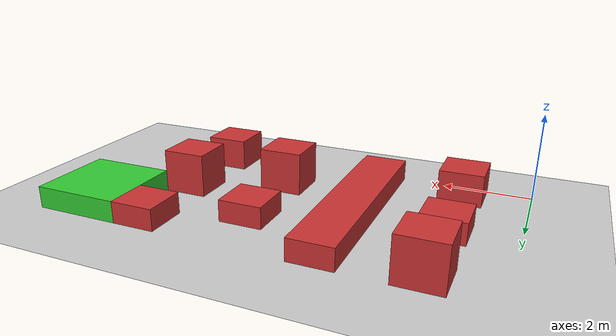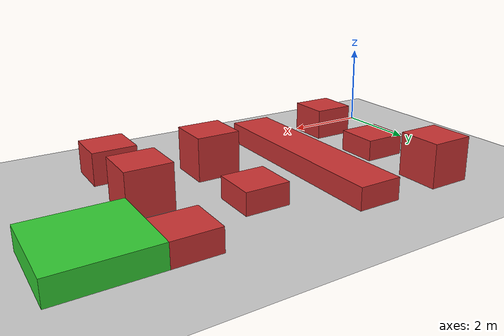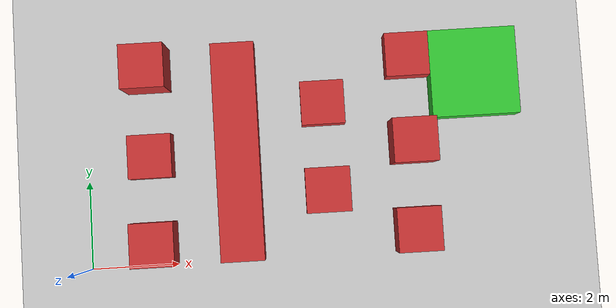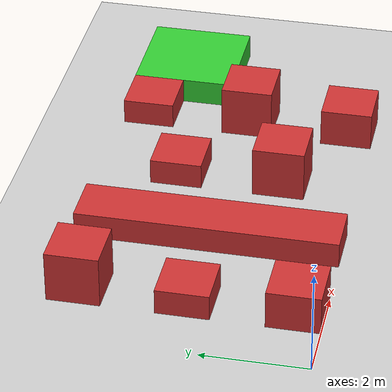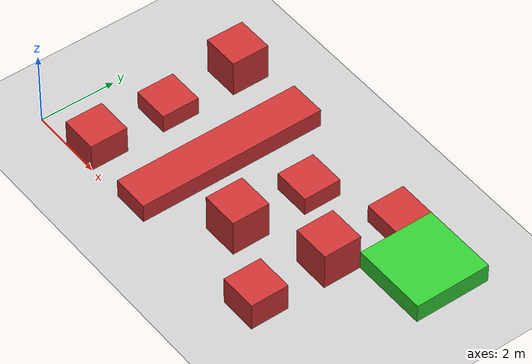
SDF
<?xml version="1.0" ?>
<sdf version="1.6">
  <world name="matlab_env">

    <!-- Include ground and sun -->
    <include>
      <uri>model://ground_plane</uri>
    </include>
    <include>
      <uri>model://sun</uri>
    </include>

    <!-- WALL_2 -->
    <model name="wall_2">
      <static>true</static>
      <pose>3.5 2.5 0.25 0 0 0</pose>
      <link name="link">
        <visual name="visual">
          <geometry><box><size>1 5 0.5</size></box></geometry>
          <material><ambient>0.8 0.2 0.2 1</ambient></material>
        </visual>
        <collision name="collision">
          <geometry><box><size>1 5 0.5</size></box></geometry>
        </collision>
      </link>
    </model>

    <!-- WALL_3 -->
    <model name="wall_3">
      <static>true</static>
      <pose>5.5 3.5 0.25 0 0 0</pose>
      <link name="link">
        <visual name="visual">
          <geometry><box><size>1 1 0.5</size></box></geometry>
          <material><ambient>0.8 0.2 0.2 1</ambient></material>
        </visual>
        <collision name="collision">
          <geometry><box><size>1 1 0.5</size></box></geometry>
        </collision>
      </link>
    </model>

    <!-- WALL_4A -->
    <model name="wall_4a">
      <static>true</static>
      <pose>1.5 0.5 0.375 0 0 0</pose>
      <link name="link">
        <visual name="visual">
          <geometry><box><size>1 1 0.75</size></box></geometry>
          <material><ambient>0.8 0.2 0.2 1</ambient></material>
        </visual>
        <collision name="collision">
          <geometry><box><size>1 1 0.75</size></box></geometry>
        </collision>
      </link>
    </model>

    <!-- WALL_4B -->
    <model name="wall_4b">
      <static>true</static>
      <pose>1.5 2.5 0.25 0 0 0</pose>
      <link name="link">
        <visual name="visual">
          <geometry><box><size>1 1 0.5</size></box></geometry>
          <material><ambient>0.8 0.2 0.2 1</ambient></material>
        </visual>
        <collision name="collision">
          <geometry><box><size>1 1 0.5</size></box></geometry>
        </collision>
      </link>
    </model>

    <!-- WALL_5 -->
    <model name="wall_5">
      <static>true</static>
      <pose>1.5 4.5 0.5 0 0 0</pose>
      <link name="link">
        <visual name="visual">
          <geometry><box><size>1 1 1</size></box></geometry>
          <material><ambient>0.8 0.2 0.2 1</ambient></material>
        </visual>
        <collision name="collision">
          <geometry><box><size>1 1 1</size></box></geometry>
        </collision>
      </link>
    </model>

    <!-- WALL_6 -->
    <model name="wall_6">
      <static>true</static>
      <pose>7.5 0.5 0.375 0 0 0</pose>
      <link name="link">
        <visual name="visual">
          <geometry><box><size>1 1 0.75</size></box></geometry>
          <material><ambient>0.8 0.2 0.2 1</ambient></material>
        </visual>
        <collision name="collision">
          <geometry><box><size>1 1 0.75</size></box></geometry>
        </collision>
      </link>
    </model>

    <!-- WALL_7 -->
    <model name="wall_7">
      <static>true</static>
      <pose>7.5 2.5 0.5 0 0 0</pose>
      <link name="link">
        <visual name="visual">
          <geometry><box><size>1 1 1</size></box></geometry>
          <material><ambient>0.8 0.2 0.2 1</ambient></material>
        </visual>
        <collision name="collision">
          <geometry><box><size>1 1 1</size></box></geometry>
        </collision>
      </link>
    </model>

    <!-- WALL_8 -->
    <model name="wall_8">
      <static>true</static>
      <pose>7.5 4.5 0.25 0 0 0</pose>
      <link name="link">
        <visual name="visual">
          <geometry><box><size>1 1 0.5</size></box></geometry>
          <material><ambient>0.8 0.2 0.2 1</ambient></material>
        </visual>
        <collision name="collision">
          <geometry><box><size>1 1 0.5</size></box></geometry>
        </collision>
      </link>
    </model>

    <!-- WALL_9 -->
    <model name="wall_9">
      <static>true</static>
      <pose>1.5 0.5 0.375 0 0 0</pose>
      <link name="link">
        <visual name="visual">
          <geometry><box><size>1 1 0.75</size></box></geometry>
          <material><ambient>0.8 0.2 0.2 1</ambient></material>
        </visual>
        <collision name="collision">
          <geometry><box><size>1 1 0.75</size></box></geometry>
        </collision>
      </link>
    </model>

    <!-- WALL_10 -->
    <model name="wall_10">
      <static>true</static>
      <pose>5.5 1.5 0.5 0 0 0</pose>
      <link name="link">
        <visual name="visual">
          <geometry><box><size>1 1 1</size></box></geometry>
          <material><ambient>0.8 0.2 0.2 1</ambient></material>
        </visual>
        <collision name="collision">
          <geometry><box><size>1 1 1</size></box></geometry>
        </collision>
      </link>
    </model>

    <!-- GOAL PLATFORM -->
    <model name="goal_platform">
      <static>true</static>
      <pose>9 4 0.25 0 0 0</pose>
      <link name="link">
        <visual name="visual">
          <geometry><box><size>2 2 0.5</size></box></geometry>
          <material><ambient>0.2 0.8 0.2 1</ambient></material>
        </visual>
        <collision name="collision">
          <geometry><box><size>2 2 0.5</size></box></geometry>
        </collision>
      </link>
    </model>

  </world>
</sdf>
